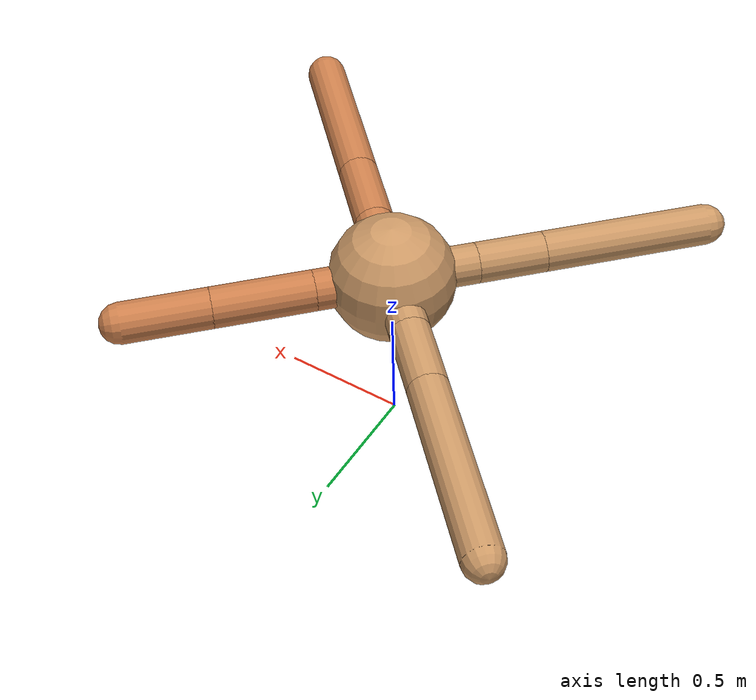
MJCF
<mujoco model="ant">
  <compiler angle="degree" coordinate="local" inertiafromgeom="true" />
  <option integrator="RK4" timestep="0.01" />
  <custom>
    <numeric data="0.0 0.0 0.55 1.0 0.0 0.0 0.0 0.0 1.0 0.0 -1.0 0.0 -1.0 0.0 1.0" name="init_qpos" />
  </custom>
  <default>
    <joint armature="1" damping="1" limited="true" />
    <geom conaffinity="0" condim="3" density="5.0" friction="1.5 0.1 0.1" margin="0.01" rgba="0.8 0.6 0.4 1" />
  </default>
  <worldbody>
    <body name="torso" pos="0 0 0.75">
      <geom name="torso_geom" pos="0 0 0" size="0.25" type="sphere" />

      <body name="front_left_leg" pos="0 0 0">
        <geom fromto="0.0 0.0 0.0 0.21383480291324958 0.21383480291324958 0.0" name="aux_1_geom" size="0.08" type="capsule" rgba=".8 .5 .3 1" />
        <body name="aux_1" pos="0.21383480291324958 0.21383480291324958 0.0">
          <joint axis="0 0 1" name="hip_1" pos="0.0 0.0 0.0" range="-40 40" type="hinge" />
          <geom fromto="0.0 0.0 0.0 0.2785489920611392 0.2785489920611392 0.0" name="left_leg_geom" size="0.08" type="capsule" rgba=".8 .5 .3 1" />
          <body pos="0.2785489920611392 0.2785489920611392 0.0" name="front_left_foot">
            <joint axis="-1 1 0" name="ankle_1" pos="0.0 0.0 0.0" range="30 100" type="hinge" />
            <geom fromto="0.0 0.0 0.0 0.24173912918243867 0.24173912918243867 0.0" name="left_ankle_geom" size="0.08" type="capsule" rgba=".8 .5 .3 1" />
          </body>
        </body>
      </body>
      <body name="front_right_leg" pos="0 0 0">
        <geom fromto="0.0 0.0 0.0 -0.20943412789541066 0.20943412789541066 0.0" name="aux_2_geom" size="0.08" type="capsule" />
        <body name="aux_2" pos="-0.20943412789541066 0.20943412789541066 0.0">
          <joint axis="0 0 1" name="hip_2" pos="0.0 0.0 0.0" range="-40 40" type="hinge" />
          <geom fromto="0.0 0.0 0.0 -0.1998832864596547 0.1998832864596547 0.0" name="right_leg_geom" size="0.08" type="capsule" />
          <body pos="-0.1998832864596547 0.1998832864596547 0.0" name="front_right_foot">
            <joint axis="1 1 0" name="ankle_2" pos="0.0 0.0 0.0" range="-100 -30" type="hinge" />
            <geom fromto="0.0 0.0 0.0 -0.5377992389286351 0.5377992389286351 0.0" name="right_ankle_geom" size="0.08" type="capsule" />
          </body>
        </body>
      </body>
      <body name="left_back_leg" pos="0 0 0">
        <geom fromto="0.0 0.0 0.0 -0.23555689271332764 -0.23555689271332764 0.0" name="aux_3_geom" size="0.08" type="capsule" />
        <body name="aux_3" pos="-0.23555689271332764 -0.23555689271332764 0.0">
          <joint axis="0 0 1" name="hip_3" pos="0.0 0.0 0.0" range="-40 40" type="hinge" />
          <geom fromto="0.0 0.0 0.0 -0.18937642682359038 -0.18937642682359038 0.0" name="back_leg_geom" size="0.08" type="capsule" />
          <body pos="-0.18937642682359038 -0.18937642682359038 0.0" name="left_back_foot">
            <joint axis="-1 1 0" name="ankle_3" pos="0.0 0.0 0.0" range="-100 -30" type="hinge" />
            <geom fromto="0.0 0.0 0.0 -0.4687238591572849 -0.4687238591572849 0.0" name="third_ankle_geom" size="0.08" type="capsule" />
          </body>
        </body>
      </body>
      <body name="right_back_leg" pos="0 0 0">
        <geom fromto="0.0 0.0 0.0 0.22271193051500654 -0.22271193051500654 0.0" name="aux_4_geom" size="0.08" type="capsule" rgba=".8 .5 .3 1" />
        <body name="aux_4" pos="0.22271193051500654 -0.22271193051500654 0.0">
          <joint axis="0 0 1" name="hip_4" pos="0.0 0.0 0.0" range="-40 40" type="hinge" />
          <geom fromto="0.0 0.0 0.0 0.21645294465255238 -0.21645294465255238 0.0" name="rightback_leg_geom" size="0.08" type="capsule" rgba=".8 .5 .3 1" />
          <body pos="0.21645294465255238 -0.21645294465255238 0.0" name="right_back_foot">
            <joint axis="1 1 0" name="ankle_4" pos="0.0 0.0 0.0" range="30 100" type="hinge" />
            <geom fromto="0.0 0.0 0.0 0.4716388890829826 -0.4716388890829826 0.0" name="fourth_ankle_geom" size="0.08" type="capsule" rgba=".8 .5 .3 1" />
          </body>
        </body>
      </body>
    </body>
  </worldbody>
  <actuator>
    <motor ctrllimited="true" ctrlrange="-1.0 1.0" joint="hip_4" gear="150" />
    <motor ctrllimited="true" ctrlrange="-1.0 1.0" joint="ankle_4" gear="150" />
    <motor ctrllimited="true" ctrlrange="-1.0 1.0" joint="hip_1" gear="150" />
    <motor ctrllimited="true" ctrlrange="-1.0 1.0" joint="ankle_1" gear="150" />
    <motor ctrllimited="true" ctrlrange="-1.0 1.0" joint="hip_2" gear="150" />
    <motor ctrllimited="true" ctrlrange="-1.0 1.0" joint="ankle_2" gear="150" />
    <motor ctrllimited="true" ctrlrange="-1.0 1.0" joint="hip_3" gear="150" />
    <motor ctrllimited="true" ctrlrange="-1.0 1.0" joint="ankle_3" gear="150" />
  </actuator>
</mujoco>
